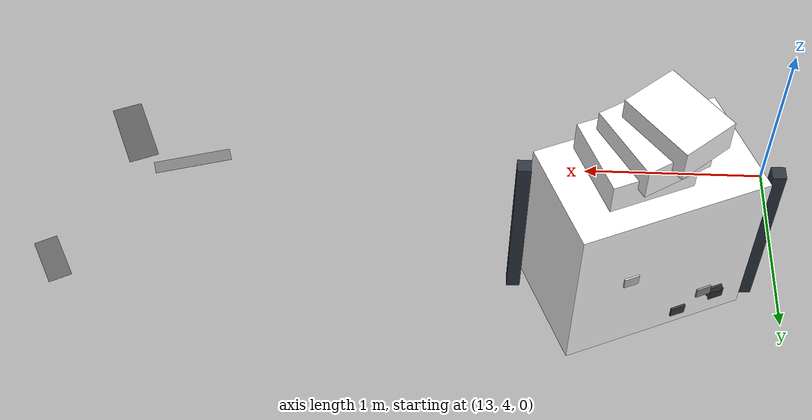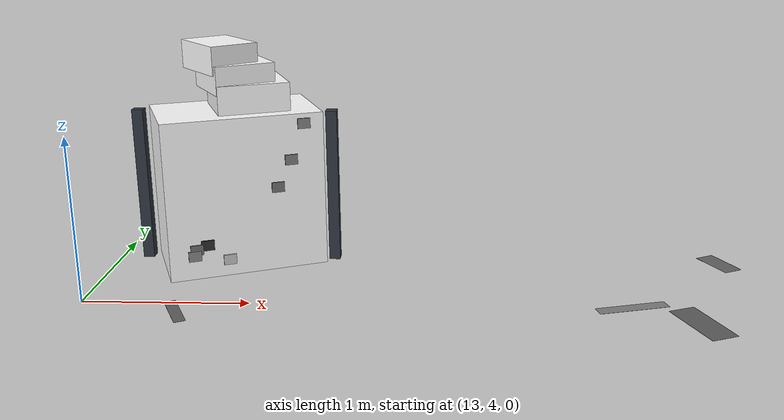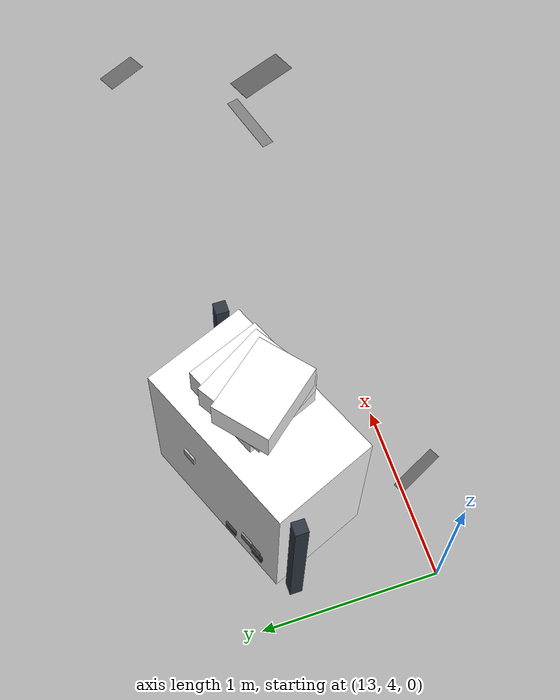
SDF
<sdf version="1.9">
 <world name="warehouse_irregular">
  <model name="concrete_patch_165">
   <static>true</static>
   <pose>16.60258557485315 3.80805605372959 0.0006 0 0 -1.1830502387978954</pose>
   <link name="body">
    <visual name="surface">
     <geometry><box><size>0.4093698933950486 0.17059007165639914 0.001</size></box></geometry>
     <material>
      <ambient>0.36455820678873807 0.36455820678873807 0.36455820678873807 1</ambient>
      <diffuse>0.36455820678873807 0.36455820678873807 0.36455820678873807 1</diffuse>
     </material>
    </visual>
   </link>
  </model>
  <model name="concrete_patch_194">
   <static>true</static>
   <pose>13.588388914420975 3.8779644720449795 0.0006 0 0 -1.1075908929417158</pose>
   <link name="body">
    <visual name="surface">
     <geometry><box><size>0.30908017254487175 0.0682282007909753 0.001</size></box></geometry>
     <material>
      <ambient>0.36772117383380065 0.36772117383380065 0.36772117383380065 1</ambient>
      <diffuse>0.36772117383380065 0.36772117383380065 0.36772117383380065 1</diffuse>
     </material>
    </visual>
   </link>
  </model>
  <model name="concrete_patch_216">
   <static>true</static>
   <pose>16.244133269551057 4.0072730111096355 0.0006 0 0 0.2658856370788083</pose>
   <link name="body">
    <visual name="surface">
     <geometry><box><size>0.4362576680751861 0.07938235502378727 0.001</size></box></geometry>
     <material>
      <ambient>0.49114494871336667 0.49114494871336667 0.49114494871336667 1</ambient>
      <diffuse>0.49114494871336667 0.49114494871336667 0.49114494871336667 1</diffuse>
     </material>
    </visual>
   </link>
  </model>
  <model name="concrete_patch_221">
   <static>true</static>
   <pose>16.928230957716572 4.714234468746344 0.0006 0 0 2.036537604435634</pose>
   <link name="body">
    <visual name="surface">
     <geometry><box><size>0.2798167587886561 0.12826817299389956 0.001</size></box></geometry>
     <material>
      <ambient>0.38854986362630883 0.38854986362630883 0.38854986362630883 1</ambient>
      <diffuse>0.38854986362630883 0.38854986362630883 0.38854986362630883 1</diffuse>
     </material>
    </visual>
   </link>
  </model>
  <model name="cabinet_2">
   <static>true</static>
   <pose>13.795038702511897 4.76205934461735 0.503775119323181 0 0 0.39420297988166264</pose>
   <link name="body">
    <visual name="surface">
     <geometry><box><size>1 0.6 1.007550238646362</size></box></geometry>
     <material>
      <ambient>1 1 1 1</ambient>
      <diffuse>1 1 1 1</diffuse>
      <pbr>
       <metal>
        <albedo_map>model://feature_warehouse_materials/textures/storage_02.png</albedo_map>
        <roughness>.9</roughness>
        <metalness>0</metalness>
       </metal>
      </pbr>
     </material>
    </visual>
    <collision name="solid"><geometry><box><size>1 0.6 1.007550238646362</size></box></geometry></collision>
   </link>
  </model>
  <model name="panel_2_0_-1">
   <static>true</static>
   <pose>13.60804696269501 4.353939386357907 0.19337968391648286 0 0 0.39420297988166264</pose>
   <link name="body">
    <visual name="surface">
     <geometry><box><size>0.08 0.012 0.065</size></box></geometry>
     <material>
      <ambient>0.43340793955813817 0.43340793955813817 0.43340793955813817 1</ambient>
      <diffuse>0.43340793955813817 0.43340793955813817 0.43340793955813817 1</diffuse>
     </material>
    </visual>
   </link>
  </model>
  <model name="panel_2_0_1">
   <static>true</static>
   <pose>13.373762786597366 4.9171541986899765 0.19337968391648286 0 0 0.39420297988166264</pose>
   <link name="body">
    <visual name="surface">
     <geometry><box><size>0.08 0.012 0.065</size></box></geometry>
     <material>
      <ambient>0.24317263079323642 0.24317263079323642 0.24317263079323642 1</ambient>
      <diffuse>0.24317263079323642 0.24317263079323642 0.24317263079323642 1</diffuse>
     </material>
    </visual>
   </link>
  </model>
  <model name="panel_2_1_-1">
   <static>true</static>
   <pose>14.092655962123223 4.555525384585526 0.5475777546038102 0 0 0.39420297988166264</pose>
   <link name="body">
    <visual name="surface">
     <geometry><box><size>0.08 0.012 0.065</size></box></geometry>
     <material>
      <ambient>0.4455978355450213 0.4455978355450213 0.4455978355450213 1</ambient>
      <diffuse>0.4455978355450213 0.4455978355450213 0.4455978355450213 1</diffuse>
     </material>
    </visual>
   </link>
  </model>
  <model name="panel_2_1_1">
   <static>true</static>
   <pose>13.85837178602558 5.118740196917597 0.5475777546038102 0 0 0.39420297988166264</pose>
   <link name="body">
    <visual name="surface">
     <geometry><box><size>0.08 0.012 0.065</size></box></geometry>
     <material>
      <ambient>0.7490725441109111 0.7490725441109111 0.7490725441109111 1</ambient>
      <diffuse>0.7490725441109111 0.7490725441109111 0.7490725441109111 1</diffuse>
     </material>
    </visual>
   </link>
  </model>
  <model name="panel_2_2_-1">
   <static>true</static>
   <pose>13.67062566740973 4.379970662443561 0.21651159877809753 0 0 0.39420297988166264</pose>
   <link name="body">
    <visual name="surface">
     <geometry><box><size>0.08 0.012 0.065</size></box></geometry>
     <material>
      <ambient>0.1781932942048647 0.1781932942048647 0.1781932942048647 1</ambient>
      <diffuse>0.1781932942048647 0.1781932942048647 0.1781932942048647 1</diffuse>
     </material>
    </visual>
   </link>
  </model>
  <model name="panel_2_2_1">
   <static>true</static>
   <pose>13.436341491312087 4.943185474775631 0.21651159877809753 0 0 0.39420297988166264</pose>
   <link name="body">
    <visual name="surface">
     <geometry><box><size>0.08 0.012 0.065</size></box></geometry>
     <material>
      <ambient>0.5308054838554868 0.5308054838554868 0.5308054838554868 1</ambient>
      <diffuse>0.5308054838554868 0.5308054838554868 0.5308054838554868 1</diffuse>
     </material>
    </visual>
   </link>
  </model>
  <model name="panel_2_3_-1">
   <static>true</static>
   <pose>14.257974008774392 4.624293821611123 0.9448132793578119 0 0 0.39420297988166264</pose>
   <link name="body">
    <visual name="surface">
     <geometry><box><size>0.08 0.012 0.065</size></box></geometry>
     <material>
      <ambient>0.5107365465843967 0.5107365465843967 0.5107365465843967 1</ambient>
      <diffuse>0.5107365465843967 0.5107365465843967 0.5107365465843967 1</diffuse>
     </material>
    </visual>
   </link>
  </model>
  <model name="panel_2_4_-1">
   <static>true</static>
   <pose>13.793000044458253 4.430875538300008 0.10719053279188681 0 0 0.39420297988166264</pose>
   <link name="body">
    <visual name="surface">
     <geometry><box><size>0.08 0.012 0.065</size></box></geometry>
     <material>
      <ambient>0.7635880465840211 0.7635880465840211 0.7635880465840211 1</ambient>
      <diffuse>0.7635880465840211 0.7635880465840211 0.7635880465840211 1</diffuse>
     </material>
    </visual>
   </link>
  </model>
  <model name="panel_2_4_1">
   <static>true</static>
   <pose>13.558715868360611 4.994090350632077 0.10719053279188681 0 0 0.39420297988166264</pose>
   <link name="body">
    <visual name="surface">
     <geometry><box><size>0.08 0.012 0.065</size></box></geometry>
     <material>
      <ambient>0.2269087562829611 0.2269087562829611 0.2269087562829611 1</ambient>
      <diffuse>0.2269087562829611 0.2269087562829611 0.2269087562829611 1</diffuse>
     </material>
    </visual>
   </link>
  </model>
  <model name="panel_2_5_-1">
   <static>true</static>
   <pose>13.594811619220152 4.34843379333464 0.1543959500631361 0 0 0.39420297988166264</pose>
   <link name="body">
    <visual name="surface">
     <geometry><box><size>0.08 0.012 0.065</size></box></geometry>
     <material>
      <ambient>0.5282654648301812 0.5282654648301812 0.5282654648301812 1</ambient>
      <diffuse>0.5282654648301812 0.5282654648301812 0.5282654648301812 1</diffuse>
     </material>
    </visual>
   </link>
  </model>
  <model name="panel_2_5_1">
   <static>true</static>
   <pose>13.36052744312251 4.911648605666709 0.1543959500631361 0 0 0.39420297988166264</pose>
   <link name="body">
    <visual name="surface">
     <geometry><box><size>0.08 0.012 0.065</size></box></geometry>
     <material>
      <ambient>0.18701599406972233 0.18701599406972233 0.18701599406972233 1</ambient>
      <diffuse>0.18701599406972233 0.18701599406972233 0.18701599406972233 1</diffuse>
     </material>
    </visual>
   </link>
  </model>
  <model name="panel_2_6_-1">
   <static>true</static>
   <pose>14.176410576185962 4.590365343195307 0.7184856594107406 0 0 0.39420297988166264</pose>
   <link name="body">
    <visual name="surface">
     <geometry><box><size>0.08 0.012 0.065</size></box></geometry>
     <material>
      <ambient>0.48688730375936107 0.48688730375936107 0.48688730375936107 1</ambient>
      <diffuse>0.48688730375936107 0.48688730375936107 0.48688730375936107 1</diffuse>
     </material>
    </visual>
   </link>
  </model>
  <model name="carton_2_0">
   <static>true</static>
   <pose>13.885968445194466 4.76205934461735 1.107550238646362 0 0 0.39420297988166264</pose>
   <link name="body">
    <visual name="surface">
     <geometry><box><size>0.45 0.42 0.18</size></box></geometry>
     <material>
      <ambient>1 1 1 1</ambient>
      <diffuse>1 1 1 1</diffuse>
      <pbr>
       <metal>
        <albedo_map>model://feature_warehouse_materials/textures/storage_02.png</albedo_map>
        <roughness>.9</roughness>
        <metalness>0</metalness>
       </metal>
      </pbr>
     </material>
    </visual>
    <collision name="solid"><geometry><box><size>0.45 0.42 0.18</size></box></geometry></collision>
   </link>
  </model>
  <model name="carton_2_1">
   <static>true</static>
   <pose>13.809150703317885 4.76205934461735 1.2275502386463621 0 0 0.5442029798816627</pose>
   <link name="body">
    <visual name="surface">
     <geometry><box><size>0.38 0.42 0.18</size></box></geometry>
     <material>
      <ambient>1 1 1 1</ambient>
      <diffuse>1 1 1 1</diffuse>
      <pbr>
       <metal>
        <albedo_map>model://feature_warehouse_materials/textures/storage_02.png</albedo_map>
        <roughness>.9</roughness>
        <metalness>0</metalness>
       </metal>
      </pbr>
     </material>
    </visual>
    <collision name="solid"><geometry><box><size>0.38 0.42 0.18</size></box></geometry></collision>
   </link>
  </model>
  <model name="carton_2_2">
   <static>true</static>
   <pose>13.719358452981105 4.76205934461735 1.347550238646362 0 0 0.6942029798816627</pose>
   <link name="body">
    <visual name="surface">
     <geometry><box><size>0.31 0.42 0.18</size></box></geometry>
     <material>
      <ambient>1 1 1 1</ambient>
      <diffuse>1 1 1 1</diffuse>
      <pbr>
       <metal>
        <albedo_map>model://feature_warehouse_materials/textures/storage_02.png</albedo_map>
        <roughness>.9</roughness>
        <metalness>0</metalness>
       </metal>
      </pbr>
     </material>
    </visual>
    <collision name="solid"><geometry><box><size>0.31 0.42 0.18</size></box></geometry></collision>
   </link>
  </model>
  <model name="post_2_-1">
   <static>true</static>
   <pose>13.175038702511898 4.76205934461735 0.5 0 0 0</pose>
   <link name="body">
    <visual name="surface">
     <geometry><box><size>0.07 0.07 1</size></box></geometry>
     <material><ambient>0.18 0.21 0.25 1</ambient><diffuse>0.18 0.21 0.25 1</diffuse></material>
    </visual>
    <collision name="solid"><geometry><box><size>0.07 0.07 1</size></box></geometry></collision>
   </link>
  </model>
  <model name="post_2_1">
   <static>true</static>
   <pose>14.415038702511897 4.76205934461735 0.5 0 0 0</pose>
   <link name="body">
    <visual name="surface">
     <geometry><box><size>0.07 0.07 1</size></box></geometry>
     <material><ambient>0.18 0.21 0.25 1</ambient><diffuse>0.18 0.21 0.25 1</diffuse></material>
    </visual>
    <collision name="solid"><geometry><box><size>0.07 0.07 1</size></box></geometry></collision>
   </link>
  </model>
 </world>
</sdf>
